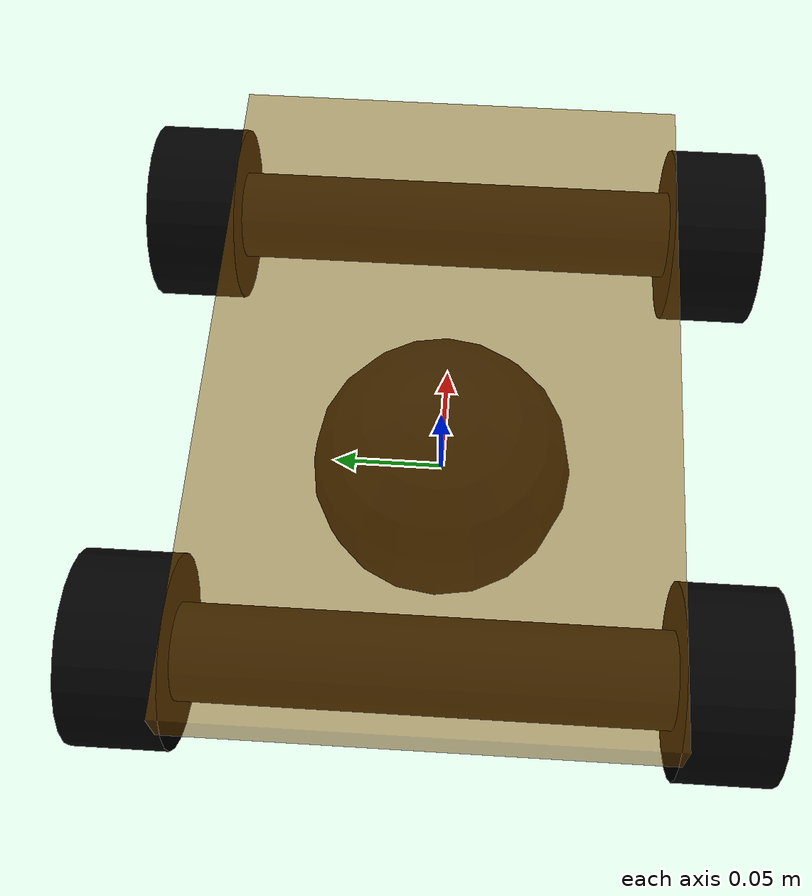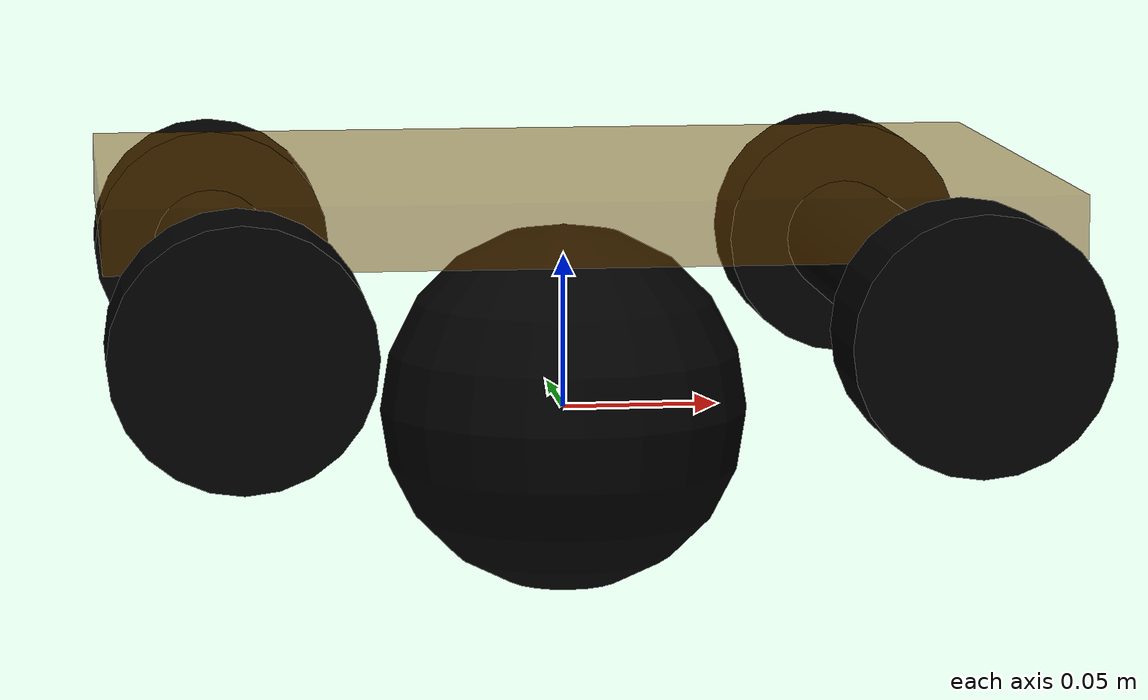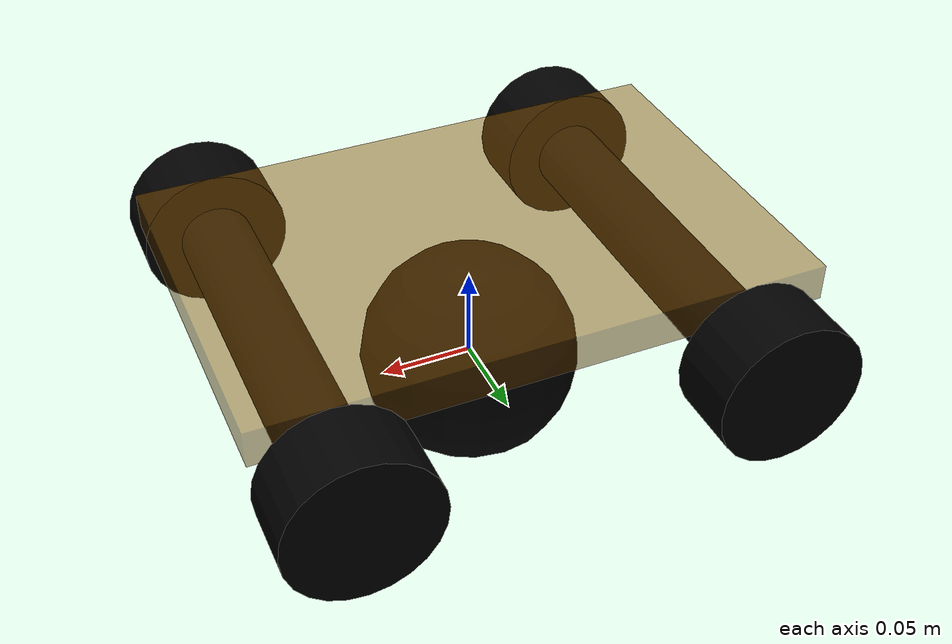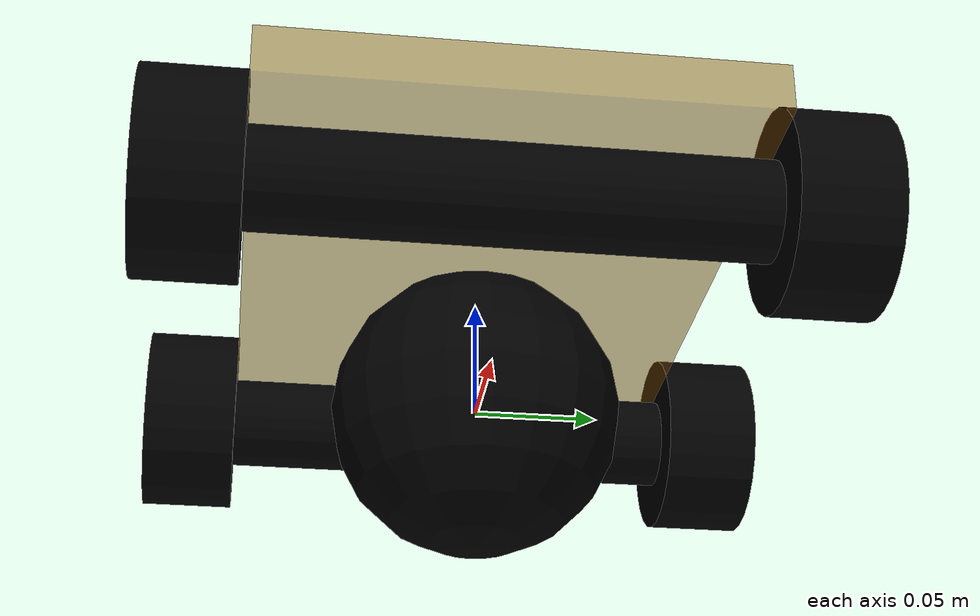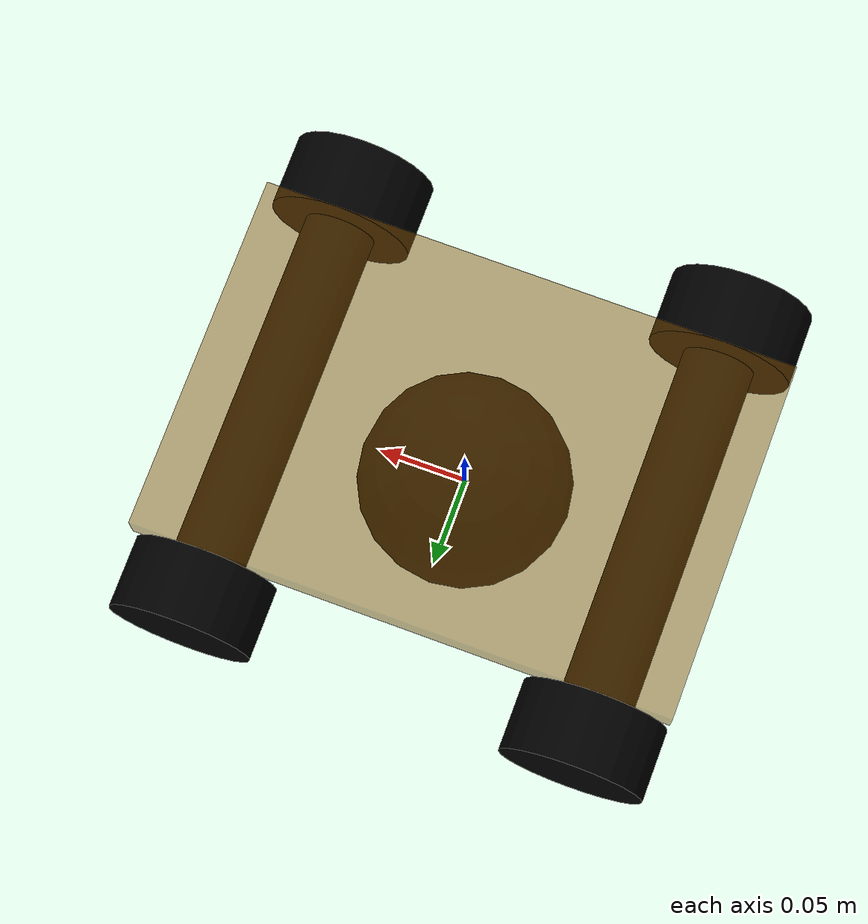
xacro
<!--
    使用 xacro 优化 URDF 版的小车底盘实现：

    实现思路:
    1.将一些常量、变量封装为 xacro:property
      比如:PI 值、小车底盘半径、离地间距、车轮半径、宽度 ....
    2.使用 宏 封装驱动轮以及支撑轮实现，调用相关宏生成驱动轮与支撑轮

-->
<!-- 根标签，必须声明 xmlns:xacro -->
<robot name="my_base" xmlns:xacro="http://www.ros.org/wiki/xacro">
    <!-- 封装变量、常量 -->
    <xacro:property name="PI" value="3.141"/>
    <!-- 宏:黑色设置 -->
    <material name="black">
        <color rgba="0.0 0.0 0.0 1.0" />
    </material>
    <!-- 底盘属性 -->
    <xacro:property name="base_footprint_radius" value="0.06" /> <!-- base_footprint 半径  -->
    <xacro:property name="base_link_length" value="0.3" /> <!-- base_link 长 -->
    <xacro:property name="base_link_width" value="0.2" /> <!-- base_link 宽 -->
    <xacro:property name="base_link_height" value="0.02" /> <!-- base_link 高 -->
    <xacro:property name="earth_space" value="0.06" /> <!-- 离地间距 -->
    <xacro:property name="base_link_m" value="0.2" /> <!-- 质量  -->

    <!-- 底盘 -->
    <link name="base_footprint">
      <visual>
        <geometry>
          <sphere radius="${base_footprint_radius}" />
        </geometry>
        <material name="yellow">
          <color rgba="0.0 0.0 0.0 0" />
        </material>
      </visual>
    </link>

    <link name="base_link">
      <visual>
        <geometry>
        <!--长宽高 -->
        <box size="${base_link_length} ${base_link_width} ${base_link_height}"/>
        </geometry>
        <origin xyz="0 0 0" rpy="0 0 0" />
        <material name="yellow">
          <color rgba="0.5 0.3 0.0 0.5" />
        </material>
      </visual>

      <collision>
        <geometry>
          <box size="${base_link_length} ${base_link_width} ${base_link_height}"/>
        </geometry>
        <origin xyz="0 0 0" rpy="0 0 0" />
      </collision>

       <xacro:Box_inertial_matrix m="${base_link_m}" l="${base_link_length}" w="${base_link_width}" h="${base_link_height}"/>
    </link>

    <joint name="base_link2base_footprint" type="fixed">
      <parent link="base_footprint" />
      <child link="base_link" />
      <origin xyz="0 0 ${base_footprint_radius + base_link_height / 2 }" />
    </joint>
     <gazebo reference="base_link">
        <material>Gazebo/Yellow</material>
    </gazebo>

    <!-- 轴承 -->
    <!-- 属性 -->
    <xacro:property name="zhou_radius" value="0.02" /><!-- 半径 -->
    <xacro:property name="zhou_length" value="${base_link_width}" /><!-- 长度 -->
    <xacro:property name="zhou_m" value="0.2" /> <!-- 质量  -->
    <!-- 轴宏实现 -->
    <xacro:macro name="zhou" params="name flag">
      <link name="${name}_zhou_link">
        <visual>
          <geometry>
            <cylinder radius="${zhou_radius}" length="${zhou_length}" />
          </geometry>
          <origin xyz="0.0 0.0 0.0" rpy="${PI / 2} 0.0 0.0" />
          <material name="black" />
        </visual>

        <collision>
          <geometry>
            <cylinder radius="${zhou_radius}" length="${zhou_length}" />
          </geometry>
          <origin xyz="0.0 0.0 0.0" rpy="${PI / 2} 0.0 0.0" />
        </collision>

        <xacro:cylinder_inertial_matrix m="${base_link_m}" r="${zhou_radius}" h="${zhou_length}" />
      </link>

    <joint name="${name}_zhou_link2base_link" type="fixed">
        <parent link="base_link" />
        <child link="${name}_zhou_link" />
        <origin xyz="${flag*(base_link_length/2-0.04)} 0 ${-(zhou_radius+base_link_height/2) }" />
    </joint>
    <gazebo reference="${name}_zhou_link">
        <material>Gazebo/Yellow</material>
    </gazebo>

    </xacro:macro>
    <xacro:zhou name="forward" flag="1" />
    <xacro:zhou name="back" flag="-1" />

     <!-- 驱动轮 -->
    <!-- 驱动轮属性 -->
    <xacro:property name="wheel_radius" value="0.04" /><!-- 半径 -->
    <xacro:property name="wheel_length" value="0.04" /><!-- 宽度 -->
    <xacro:property name="wheel_m" value="0.05" /> <!-- 质量  -->
    <!-- 前驱动轮宏实现 -->
    <xacro:macro name="add_wheels" params="name flag_lr1">
      <link name="${name}_forward_wheel">
        <visual>
          <geometry>
            <cylinder radius="${wheel_radius}" length="${wheel_length}" />
          </geometry>
          <origin xyz="0.0 0.0 0.0" rpy="${PI / 2} 0.0 0.0" />
          <material name="black" />
        </visual>
        <collision>
          <geometry>
            <cylinder radius="${wheel_radius}" length="${wheel_length}" />
          </geometry>
          <origin xyz="0.0 0.0 0.0" rpy="${PI / 2} 0.0 0.0" />
        </collision>

       <xacro:cylinder_inertial_matrix m="${wheel_m}" r="${wheel_radius}" h="${wheel_length}" />
      </link>

      <joint name="${name}_forward_wheel2forward_zhou_link" type="continuous">
        <parent link="forward_zhou_link" />
        <child link="${name}_forward_wheel" />
        <origin xyz="0 ${flag_lr1 * (base_link_width/2+wheel_length/2)} 0 " />
        <axis xyz="0 1 0" />
      </joint>

      <gazebo reference="${name}_forward_wheel">
        <material>Gazebo/Red</material>
      </gazebo>

    </xacro:macro>
    <xacro:add_wheels name="left" flag_lr1="1" />
    <xacro:add_wheels name="right" flag_lr1="-1" />
   <!-- 后驱动轮 -->
   <xacro:macro name="add_wheels" params="name flag_lr2">
      <link name="${name}_back_wheel">
        <visual>
          <geometry>
            <cylinder radius="${wheel_radius}" length="${wheel_length}" />
          </geometry>
          <origin xyz="0.0 0.0 0.0" rpy="${PI / 2} 0.0 0.0" />
          <material name="black" />
        </visual>

        <collision>
          <geometry>
            <cylinder radius="${wheel_radius}" length="${wheel_length}" />
          </geometry>
          <origin xyz="0.0 0.0 0.0" rpy="${PI / 2} 0.0 0.0" />
        </collision>

       <xacro:cylinder_inertial_matrix m="${wheel_m}" r="${wheel_radius}" h="${wheel_length}" />

      </link>

      <joint name="${name}_back_wheel2back_zhou_link" type="continuous">
        <parent link="back_zhou_link" />
        <child link="${name}_back_wheel" />
        <origin xyz="0 ${flag_lr2 * (base_link_width/2+wheel_length/2)} 0 " />
        <axis xyz="0 1 0" />
      </joint>

      <gazebo reference="${name}_back_wheel">
        <material>Gazebo/Red</material>
      </gazebo>

    </xacro:macro>
    <xacro:add_wheels name="left" flag_lr2="1" />
    <xacro:add_wheels name="right" flag_lr2="-1" />

</robot>
